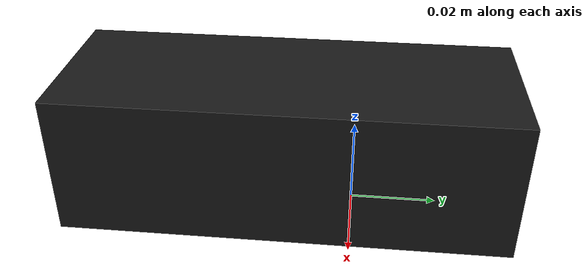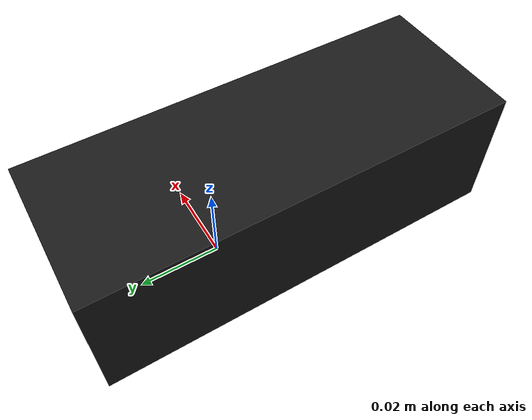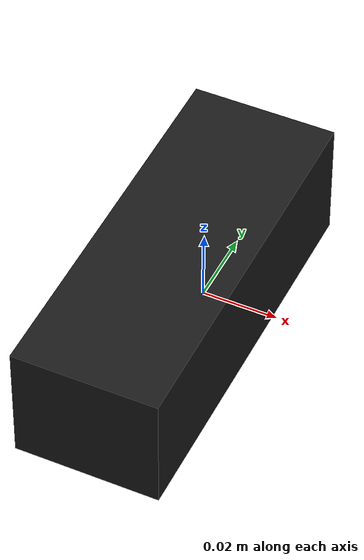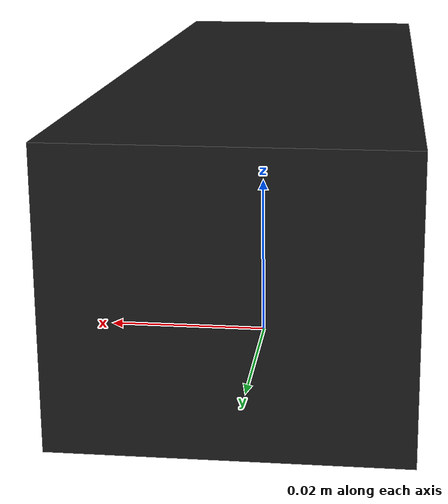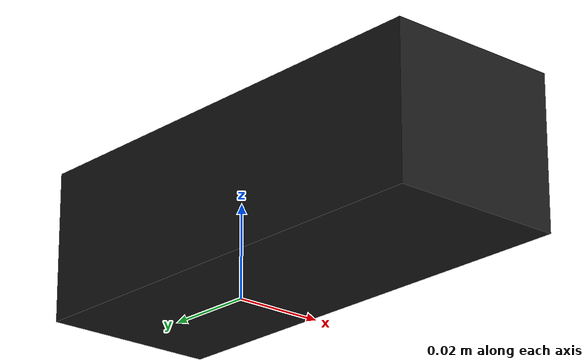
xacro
<?xml version="1.0"?>
<!--
Copyright (c) 2019, I3D Robotics Ltd.
-->

<robot name="example_camera"
    xmlns:xacro="http://ros.org/wiki/xacro">

    <xacro:include filename="$(find i3dr_custom_camera-ros)/urdf/i3dr_stereo_camera.urdf.xacro" />

    <xacro:i3dr_stereo_camera camera_name="example_camera" baseline="0.06" toe_in_r="0" toe_in_l="0" width="0.038" height="0.10175" length="0.03242" mount_offset_y="-0.015" image_width="752" image_height="480" image_format="MONO8" hfov="1.04" focus_near="0.3" r="0.1" g="0.1" b="0.1" />

</robot>

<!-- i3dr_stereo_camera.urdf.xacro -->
<!--
Copyright (c) 2019, I3D Robotics Ltd.
-->

<robot xmlns:xacro="http://ros.org/wiki/xacro">
    <xacro:macro name="i3dr_stereo_camera" params="camera_name baseline toe_in_r toe_in_l width height length image_format:=RGB8 image_height:=640 image_width:=480 hfov:=1.579 focus_near:=0 focus_far:=100 camera_offset_x:=0 camera_offset_y:=0 camera_offset_z:=0 mount_offset_x:=0 mount_offset_y:=0 mount_offset_z:=0 r:=1 g:=0 b:=0 a:=1">
        <link name="${camera_name}_cameraLeft_optical" />
        <link name="${camera_name}_cameraRight_optical" />
        <link name="${camera_name}_cameraLeft" />
        <link name="${camera_name}_cameraRight" />

        <link name="${camera_name}_base_link" />

        <link name="${camera_name}_center">
            <visual>
                <origin xyz="0 0 0" rpy="0 0 0"/>
                <geometry>
                    <box size="${width} ${height} ${length}"/>
                </geometry>
                <material name="${camera_name}_camera_colour">
                    <color rgba="${r} ${g} ${b} ${a}"/>
                </material>
            </visual>
        </link>

        <joint name="${camera_name}_right_camera_joint" type="fixed">
            <parent link="${camera_name}_center"/>
            <child link="${camera_name}_cameraRight"/>
            <origin xyz="${camera_offset_x} -${(baseline/2)+camera_offset_y} ${camera_offset_z}" rpy="0 0 0" />
        </joint>

        <joint name="${camera_name}_left_camera_joint" type="fixed">
            <parent link="${camera_name}_center"/>
            <child link="${camera_name}_cameraLeft"/>
            <origin xyz="${camera_offset_x} ${(baseline/2)+camera_offset_y} ${camera_offset_z}" rpy="0 0 0" />
        </joint>

        <joint name="${camera_name}_left_optical_joint" type="fixed">
            <parent link="${camera_name}_cameraLeft"/>
            <child link="${camera_name}_cameraLeft_optical"/>
            <!-- Correct for the optical frame orientation -->
            <origin xyz="0 0 0" rpy="${-pi/2} 0 ${(-pi/2)-(toe_in_l * (pi/180))}" />
        </joint>

        <joint name="${camera_name}_right_optical_joint" type="fixed">
            <parent link="${camera_name}_cameraRight"/>
            <child link="${camera_name}_cameraRight_optical"/>
            <!-- Correct for the optical frame orientation -->
            <origin xyz="0 0 0" rpy="${-pi/2} 0 ${(-pi/2)+(toe_in_r * (pi/180))}" />
        </joint>

        <sensor name="${camera_name}_right_camera_sensor" update_rate="60">
            <parent link="${camera_name}_cameraRight_optical"/>
            <origin xyz="0 0 0" rpy="0 0 0"/>
            <camera>
                <image width="${image_width}" height="${image_height}" hfov="${hfov}" format="${image_format}" near="${focus_near}" far="${focus_far}"/>
            </camera>
        </sensor>

        <joint name="${camera_name}_mount_center_joint" type="fixed">
            <parent link="${camera_name}_base_link"/>
            <child link="${camera_name}_center"/>
            <origin xyz="${mount_offset_x} ${mount_offset_y} ${(length/2)+mount_offset_z}" rpy="0 0 0" />
        </joint>

        <!-- Correct for IMU orientation, Z -> X -->

    </xacro:macro>
</robot>
